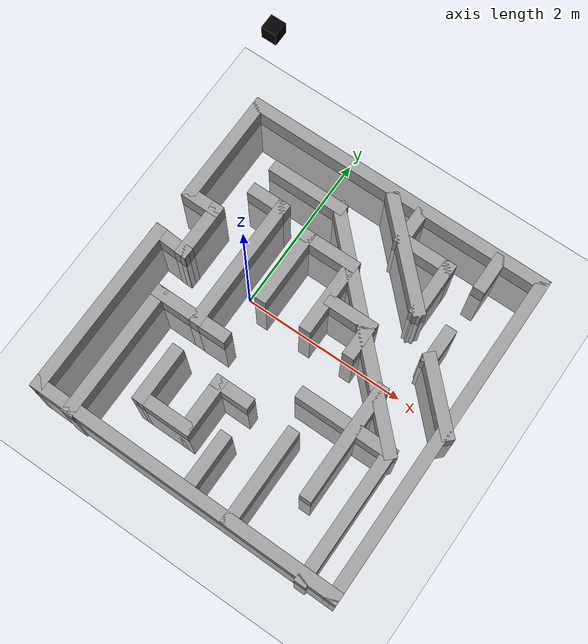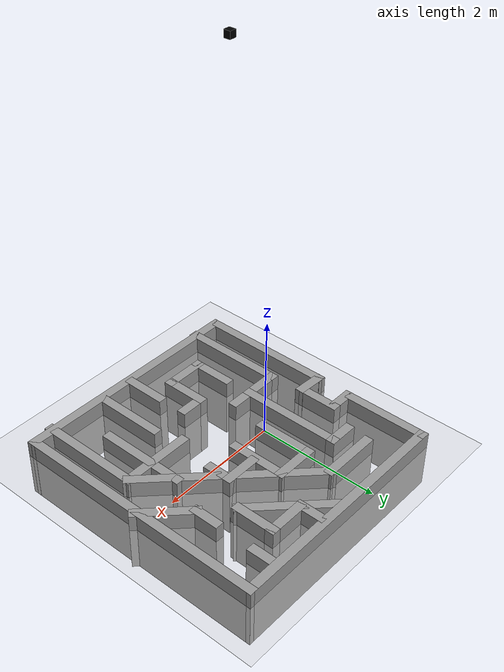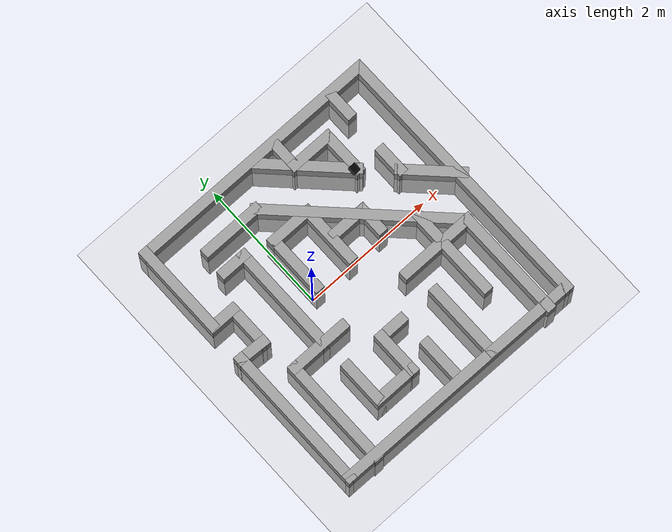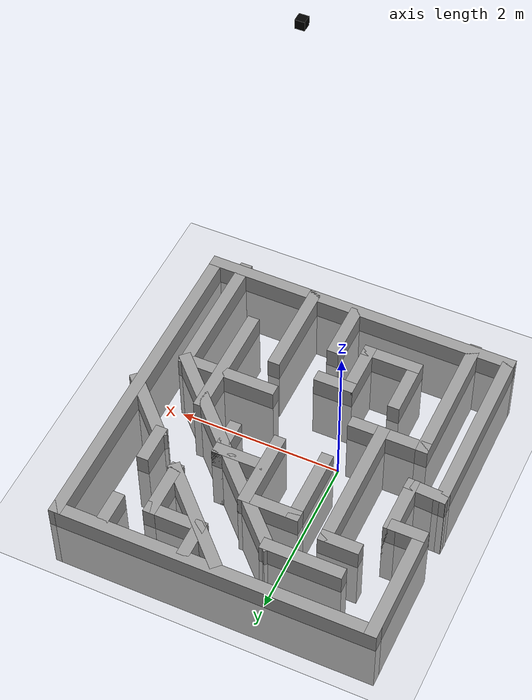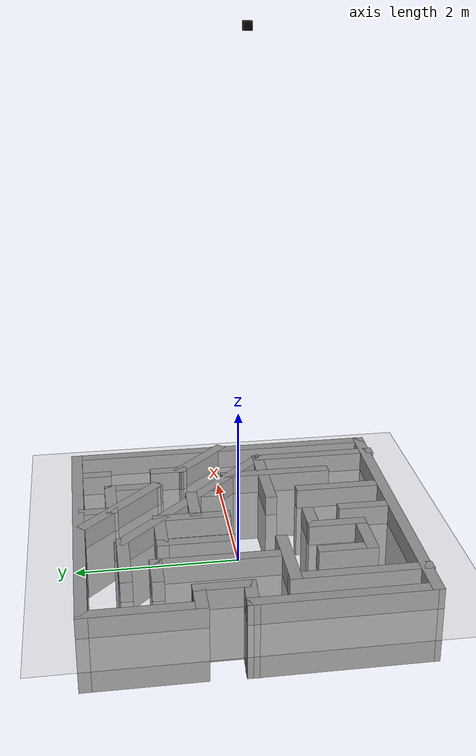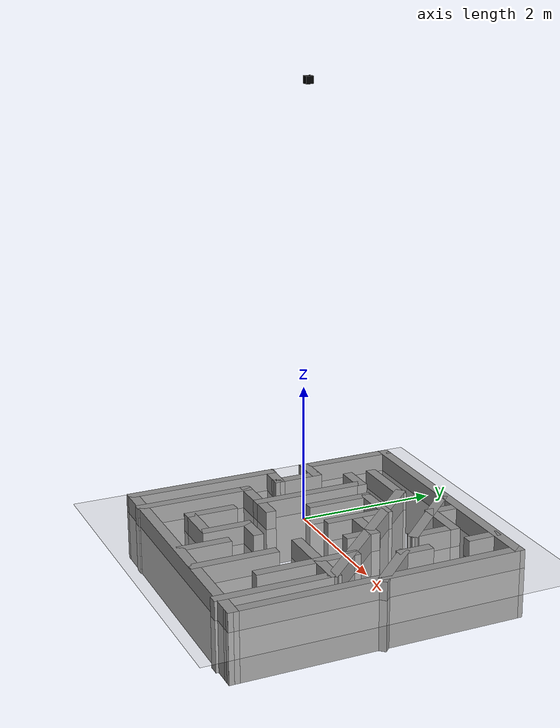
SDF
<sdf version="1.7">
 <world name="default">
  <model name="ground_plane">
   <static>1</static>
   <link name="link">
    <collision name="collision">
     <geometry><plane><normal>0 0 1</normal><size>100 100</size></plane></geometry>
     <surface>
      <contact><collide_bitmask>65535</collide_bitmask></contact>
      <friction><ode><mu>100</mu><mu2>50</mu2></ode></friction>
     </surface>
    </collision>
    <visual name="visual">
     <cast_shadows>0</cast_shadows>
     <geometry><plane><normal>0 0 1</normal><size>100 100</size></plane></geometry>
     <material>
      <script><uri>file://media/materials/scripts/gazebo.material</uri><name>Gazebo/Grey</name></script>
     </material>
    </visual>
   </link>
  </model>
  <light name="sun" type="directional">
   <pose>0 0 10 0 -0 0</pose>
   <diffuse>0.8 0.8 0.8 1</diffuse>
   <specular>0.2 0.2 0.2 1</specular>
   <attenuation>
    <range>1000</range>
    <constant>0.9</constant>
    <linear>0.01</linear>
    <quadratic>0.001</quadratic>
   </attenuation>
   <direction>-0.5 0.1 -0.9</direction>
   <spot><inner_angle>0</inner_angle><outer_angle>0</outer_angle><falloff>0</falloff></spot>
  </light>
  <scene><shadows>0</shadows><ambient>0.4 0.4 0.4 1</ambient><background>0.7 0.7 0.7 1</background></scene>
  <physics type="ode">
   <real_time_update_rate>1000</real_time_update_rate>
   <max_step_size>0.001</max_step_size>
   <real_time_factor>1</real_time_factor>
   <ode>
    <solver>
     <type>quick</type>
     <iters>150</iters>
     <precon_iters>0</precon_iters>
     <sor>1.4</sor>
     <use_dynamic_moi_rescaling>1</use_dynamic_moi_rescaling>
    </solver>
    <constraints>
     <cfm>1e-05</cfm>
     <erp>0.2</erp>
     <contact_max_correcting_vel>2000</contact_max_correcting_vel>
     <contact_surface_layer>0.01</contact_surface_layer>
    </constraints>
   </ode>
  </physics>
  <gravity>0 0 -9.8</gravity>
  <magnetic_field>6e-06 2.3e-05 -4.2e-05</magnetic_field>
  <atmosphere type="adiabatic"/>
  <audio><device>default</device></audio>
  <spherical_coordinates>
   <surface_model>EARTH_WGS84</surface_model>
   <latitude_deg>0</latitude_deg>
   <longitude_deg>0</longitude_deg>
   <elevation>0</elevation>
   <heading_deg>0</heading_deg>
  </spherical_coordinates>
  <model name="camera">
   <pose>0.579863 -0.18546 6.32055 1.57079 1.57079 3.14159</pose>
   <static>1</static>
   <link name="link">
    <inertial>
     <mass>0.1</mass>
     <inertia>
      <ixx>0.000166667</ixx>
      <iyy>0.000166667</iyy>
      <izz>0.000166667</izz>
      <ixy>0</ixy>
      <ixz>0</ixz>
      <iyz>0</iyz>
     </inertia>
    </inertial>
    <collision name="collision"><geometry><box><size>0.1 0.1 0.1</size></box></geometry></collision>
    <visual name="visual">
     <geometry><box><size>0.1 0.1 0.1</size></box></geometry>
     <material>
      <ambient>0 0 0 1</ambient>
      <diffuse>0 0 0 1</diffuse>
      <specular>0 0 0 0</specular>
      <emissive>1 0 0 1</emissive>
     </material>
    </visual>
    <sensor name="camera" type="camera">
     <camera>
      <horizontal_fov>1.047</horizontal_fov>
      <image><width>320</width><height>240</height></image>
      <clip><near>0.1</near><far>100</far></clip>
     </camera>
     <plugin name="camera_controller" filename="libgazebo_ros_camera.so"/>
     <always_on>1</always_on>
     <update_rate>30</update_rate>
     <visualize>1</visualize>
    </sensor>
   </link>
  </model>
  <model name="mazeSWY">
   <pose>0.699615 -0.128175 -0.743142 0 -0 0</pose>
   <link name="Wall_0">
    <collision name="Wall_0_Collision">
     <geometry><box><size>4.03012 0.15 1</size></box></geometry>
     <pose>0 0 0.5 0 -0 0</pose>
    </collision>
    <visual name="Wall_0_Visual">
     <pose>0 0 0.5 0 -0 0</pose>
     <geometry><box><size>4.03012 0.15 1</size></box></geometry>
     <material>
      <script><uri>file://media/materials/scripts/gazebo.material</uri><name>Gazebo/Grey</name></script>
      <ambient>1 1 1 1</ambient>
     </material>
    </visual>
    <pose>-0.033574 -2.02259 0 0 0 -0.007732</pose>
   </link>
   <link name="Wall_11">
    <collision name="Wall_11_Collision">
     <geometry><box><size>1.75 0.15 1</size></box></geometry>
     <pose>0 0 0.5 0 -0 0</pose>
    </collision>
    <visual name="Wall_11_Visual">
     <pose>0 0 0.5 0 -0 0</pose>
     <geometry><box><size>1.75 0.15 1</size></box></geometry>
     <material>
      <script><uri>file://media/materials/scripts/gazebo.material</uri><name>Gazebo/Grey</name></script>
      <ambient>1 1 1 1</ambient>
     </material>
    </visual>
    <pose>-1.52357 -1.22759 0 0 -0 1.5708</pose>
   </link>
   <link name="Wall_2">
    <collision name="Wall_2_Collision">
     <geometry><box><size>4.26001 0.15 1</size></box></geometry>
     <pose>0 0 0.5 0 -0 0</pose>
    </collision>
    <visual name="Wall_2_Visual">
     <pose>0 0 0.5 0 -0 0</pose>
     <geometry><box><size>4.26001 0.15 1</size></box></geometry>
     <material>
      <script><uri>file://media/materials/scripts/gazebo.material</uri><name>Gazebo/Grey</name></script>
      <ambient>1 1 1 1</ambient>
     </material>
    </visual>
    <pose>1.90143 0.017409 0 0 -0 1.57323</pose>
   </link>
   <link name="Wall_205">
    <collision name="Wall_205_Collision">
     <geometry><box><size>1 0.15 1</size></box></geometry>
     <pose>0 0 0.5 0 -0 0</pose>
    </collision>
    <visual name="Wall_205_Visual">
     <pose>0 0 0.5 0 -0 0</pose>
     <geometry><box><size>1 0.15 1</size></box></geometry>
     <material>
      <script><uri>file://media/materials/scripts/gazebo.material</uri><name>Gazebo/Grey</name></script>
      <ambient>1 1 1 1</ambient>
     </material>
    </visual>
    <pose>-1.09857 -0.427591 0 0 -0 0</pose>
   </link>
   <link name="Wall_21">
    <collision name="Wall_21_Collision">
     <geometry><box><size>1.75 0.15 1</size></box></geometry>
     <pose>0 0 0.5 0 -0 0</pose>
    </collision>
    <visual name="Wall_21_Visual">
     <pose>0 0 0.5 0 -0 0</pose>
     <geometry><box><size>1.75 0.15 1</size></box></geometry>
     <material>
      <script><uri>file://media/materials/scripts/gazebo.material</uri><name>Gazebo/Grey</name></script>
      <ambient>1 1 1 1</ambient>
     </material>
    </visual>
    <pose>-1.00357 0.372409 0 0 -0 1.5708</pose>
   </link>
   <link name="Wall_22">
    <collision name="Wall_22_Collision">
     <geometry><box><size>0.5 0.15 1</size></box></geometry>
     <pose>0 0 0.5 0 -0 0</pose>
    </collision>
    <visual name="Wall_22_Visual">
     <pose>0 0 0.5 0 -0 0</pose>
     <geometry><box><size>0.5 0.15 1</size></box></geometry>
     <material>
      <script><uri>file://media/materials/scripts/gazebo.material</uri><name>Gazebo/Grey</name></script>
      <ambient>1 1 1 1</ambient>
     </material>
    </visual>
    <pose>-1.17857 1.17241 0 0 -0 3.14159</pose>
   </link>
   <link name="Wall_24">
    <collision name="Wall_24_Collision">
     <geometry><box><size>0.75 0.15 1</size></box></geometry>
     <pose>0 0 0.5 0 -0 0</pose>
    </collision>
    <visual name="Wall_24_Visual">
     <pose>0 0 0.5 0 -0 0</pose>
     <geometry><box><size>0.75 0.15 1</size></box></geometry>
     <material>
      <script><uri>file://media/materials/scripts/gazebo.material</uri><name>Gazebo/Grey</name></script>
      <ambient>1 1 1 1</ambient>
     </material>
    </visual>
    <pose>-0.983574 -1.18759 0 0 0 -1.5708</pose>
   </link>
   <link name="Wall_25">
    <collision name="Wall_25_Collision">
     <geometry><box><size>0.75 0.15 1</size></box></geometry>
     <pose>0 0 0.5 0 -0 0</pose>
    </collision>
    <visual name="Wall_25_Visual">
     <pose>0 0 0.5 0 -0 0</pose>
     <geometry><box><size>0.75 0.15 1</size></box></geometry>
     <material>
      <script><uri>file://media/materials/scripts/gazebo.material</uri><name>Gazebo/Grey</name></script>
      <ambient>1 1 1 1</ambient>
     </material>
    </visual>
    <pose>-0.683574 -1.48759 0 0 -0 0</pose>
   </link>
   <link name="Wall_26">
    <collision name="Wall_26_Collision">
     <geometry><box><size>0.75 0.15 1</size></box></geometry>
     <pose>0 0 0.5 0 -0 0</pose>
    </collision>
    <visual name="Wall_26_Visual">
     <pose>0 0 0.5 0 -0 0</pose>
     <geometry><box><size>0.75 0.15 1</size></box></geometry>
     <material>
      <script><uri>file://media/materials/scripts/gazebo.material</uri><name>Gazebo/Grey</name></script>
      <ambient>1 1 1 1</ambient>
     </material>
    </visual>
    <pose>-0.383574 -1.18759 0 0 -0 1.5708</pose>
   </link>
   <link name="Wall_27">
    <collision name="Wall_27_Collision">
     <geometry><box><size>0.5 0.15 1</size></box></geometry>
     <pose>0 0 0.5 0 -0 0</pose>
    </collision>
    <visual name="Wall_27_Visual">
     <pose>0 0 0.5 0 -0 0</pose>
     <geometry><box><size>0.5 0.15 1</size></box></geometry>
     <material>
      <script><uri>file://media/materials/scripts/gazebo.material</uri><name>Gazebo/Grey</name></script>
      <ambient>1 1 1 1</ambient>
     </material>
    </visual>
    <pose>-0.208574 -0.887591 0 0 -0 0</pose>
   </link>
   <link name="Wall_29">
    <collision name="Wall_29_Collision">
     <geometry><box><size>1 0.15 1</size></box></geometry>
     <pose>0 0 0.5 0 -0 0</pose>
    </collision>
    <visual name="Wall_29_Visual">
     <pose>0 0 0.5 0 -0 0</pose>
     <geometry><box><size>1 0.15 1</size></box></geometry>
     <material>
      <script><uri>file://media/materials/scripts/gazebo.material</uri><name>Gazebo/Grey</name></script>
      <ambient>1 1 1 1</ambient>
     </material>
    </visual>
    <pose>-0.888574 1.54241 0 0 -0 0</pose>
   </link>
   <link name="Wall_30">
    <collision name="Wall_30_Collision">
     <geometry><box><size>3 0.15 1</size></box></geometry>
     <pose>0 0 0.5 0 -0 0</pose>
    </collision>
    <visual name="Wall_30_Visual">
     <pose>0 0 0.5 0 -0 0</pose>
     <geometry><box><size>3 0.15 1</size></box></geometry>
     <material>
      <script><uri>file://media/materials/scripts/gazebo.material</uri><name>Gazebo/Grey</name></script>
      <ambient>1 1 1 1</ambient>
     </material>
    </visual>
    <pose>0.543926 0.534909 0 0 0 -0.785398</pose>
   </link>
   <link name="Wall_31">
    <collision name="Wall_31_Collision">
     <geometry><box><size>1.75 0.15 1</size></box></geometry>
     <pose>0 0 0.5 0 -0 0</pose>
    </collision>
    <visual name="Wall_31_Visual">
     <pose>0 0 0.5 0 -0 0</pose>
     <geometry><box><size>1.75 0.15 1</size></box></geometry>
     <material>
      <script><uri>file://media/materials/scripts/gazebo.material</uri><name>Gazebo/Grey</name></script>
      <ambient>1 1 1 1</ambient>
     </material>
    </visual>
    <pose>1.55143 -1.27259 0 0 0 -1.5708</pose>
   </link>
   <link name="Wall_33">
    <collision name="Wall_33_Collision">
     <geometry><box><size>0.75 0.15 1</size></box></geometry>
     <pose>0 0 0.5 0 -0 0</pose>
    </collision>
    <visual name="Wall_33_Visual">
     <pose>0 0 0.5 0 -0 0</pose>
     <geometry><box><size>0.75 0.15 1</size></box></geometry>
     <material>
      <script><uri>file://media/materials/scripts/gazebo.material</uri><name>Gazebo/Grey</name></script>
      <ambient>1 1 1 1</ambient>
     </material>
    </visual>
    <pose>-0.263574 1.05241 0 0 -0 3.14159</pose>
   </link>
   <link name="Wall_34">
    <collision name="Wall_34_Collision">
     <geometry><box><size>1 0.15 1</size></box></geometry>
     <pose>0 0 0.5 0 -0 0</pose>
    </collision>
    <visual name="Wall_34_Visual">
     <pose>0 0 0.5 0 -0 0</pose>
     <geometry><box><size>1 0.15 1</size></box></geometry>
     <material>
      <script><uri>file://media/materials/scripts/gazebo.material</uri><name>Gazebo/Grey</name></script>
      <ambient>1 1 1 1</ambient>
     </material>
    </visual>
    <pose>-0.563574 0.627409 0 0 0 -1.5708</pose>
   </link>
   <link name="Wall_36">
    <collision name="Wall_36_Collision">
     <geometry><box><size>1 0.15 1</size></box></geometry>
     <pose>0 0 0.5 0 -0 0</pose>
    </collision>
    <visual name="Wall_36_Visual">
     <pose>0 0 0.5 0 -0 0</pose>
     <geometry><box><size>1 0.15 1</size></box></geometry>
     <material>
      <script><uri>file://media/materials/scripts/gazebo.material</uri><name>Gazebo/Grey</name></script>
      <ambient>1 1 1 1</ambient>
     </material>
    </visual>
    <pose>0.036426 0.627409 0 0 0 -1.5708</pose>
   </link>
   <link name="Wall_38">
    <collision name="Wall_38_Collision">
     <geometry><box><size>0.64 0.15 1</size></box></geometry>
     <pose>0 0 0.5 0 -0 0</pose>
    </collision>
    <visual name="Wall_38_Visual">
     <pose>0 0 0.5 0 -0 0</pose>
     <geometry><box><size>0.64 0.15 1</size></box></geometry>
     <material>
      <script><uri>file://media/materials/scripts/gazebo.material</uri><name>Gazebo/Grey</name></script>
      <ambient>1 1 1 1</ambient>
     </material>
    </visual>
    <pose>0.351426 0.572409 0 0 -0 0</pose>
   </link>
   <link name="Wall_4">
    <collision name="Wall_4_Collision">
     <geometry><box><size>4 0.15 1</size></box></geometry>
     <pose>0 0 0.5 0 -0 0</pose>
    </collision>
    <visual name="Wall_4_Visual">
     <pose>0 0 0.5 0 -0 0</pose>
     <geometry><box><size>4 0.15 1</size></box></geometry>
     <material>
      <script><uri>file://media/materials/scripts/gazebo.material</uri><name>Gazebo/Grey</name></script>
      <ambient>1 1 1 1</ambient>
     </material>
    </visual>
    <pose>-0.028574 2.07241 0 0 -0 3.14159</pose>
   </link>
   <link name="Wall_42">
    <collision name="Wall_42_Collision">
     <geometry><box><size>0.5 0.15 1</size></box></geometry>
     <pose>0 0 0.5 0 -0 0</pose>
    </collision>
    <visual name="Wall_42_Visual">
     <pose>0 0 0.5 0 -0 0</pose>
     <geometry><box><size>0.5 0.15 1</size></box></geometry>
     <material>
      <script><uri>file://media/materials/scripts/gazebo.material</uri><name>Gazebo/Grey</name></script>
      <ambient>1 1 1 1</ambient>
     </material>
    </visual>
    <pose>0.596426 0.397409 0 0 0 -1.5708</pose>
   </link>
   <link name="Wall_44">
    <collision name="Wall_44_Collision">
     <geometry><box><size>1.5 0.15 1</size></box></geometry>
     <pose>0 0 0.5 0 -0 0</pose>
    </collision>
    <visual name="Wall_44_Visual">
     <pose>0 0 0.5 0 -0 0</pose>
     <geometry><box><size>1.5 0.15 1</size></box></geometry>
     <material>
      <script><uri>file://media/materials/scripts/gazebo.material</uri><name>Gazebo/Grey</name></script>
      <ambient>1 1 1 1</ambient>
     </material>
    </visual>
    <pose>1.09643 -0.642591 0 0 0 -1.5708</pose>
   </link>
   <link name="Wall_46">
    <collision name="Wall_46_Collision">
     <geometry><box><size>1.25 0.15 1</size></box></geometry>
     <pose>0 0 0.5 0 -0 0</pose>
    </collision>
    <visual name="Wall_46_Visual">
     <pose>0 0 0.5 0 -0 0</pose>
     <geometry><box><size>1.25 0.15 1</size></box></geometry>
     <material>
      <script><uri>file://media/materials/scripts/gazebo.material</uri><name>Gazebo/Grey</name></script>
      <ambient>1 1 1 1</ambient>
     </material>
    </visual>
    <pose>1.00143 -0.472591 0 0 -0 3.14159</pose>
   </link>
   <link name="Wall_48">
    <collision name="Wall_48_Collision">
     <geometry><box><size>1.25 0.15 1</size></box></geometry>
     <pose>0 0 0.5 0 -0 0</pose>
    </collision>
    <visual name="Wall_48_Visual">
     <pose>0 0 0.5 0 -0 0</pose>
     <geometry><box><size>1.25 0.15 1</size></box></geometry>
     <material>
      <script><uri>file://media/materials/scripts/gazebo.material</uri><name>Gazebo/Grey</name></script>
      <ambient>1 1 1 1</ambient>
     </material>
    </visual>
    <pose>0.576426 -1.46759 0 0 -0 1.5708</pose>
   </link>
   <link name="Wall_5">
    <collision name="Wall_5_Collision">
     <geometry><box><size>1.5 0.15 1</size></box></geometry>
     <pose>0 0 0.5 0 -0 0</pose>
    </collision>
    <visual name="Wall_5_Visual">
     <pose>0 0 0.5 0 -0 0</pose>
     <geometry><box><size>1.5 0.15 1</size></box></geometry>
     <material>
      <script><uri>file://media/materials/scripts/gazebo.material</uri><name>Gazebo/Grey</name></script>
      <ambient>1 1 1 1</ambient>
     </material>
    </visual>
    <pose>-1.95357 1.39741 0 0 0 -1.5708</pose>
   </link>
   <link name="Wall_50">
    <collision name="Wall_50_Collision">
     <geometry><box><size>0.75 0.15 1</size></box></geometry>
     <pose>0 0 0.5 0 -0 0</pose>
    </collision>
    <visual name="Wall_50_Visual">
     <pose>0 0 0.5 0 -0 0</pose>
     <geometry><box><size>0.75 0.15 1</size></box></geometry>
     <material>
      <script><uri>file://media/materials/scripts/gazebo.material</uri><name>Gazebo/Grey</name></script>
      <ambient>1 1 1 1</ambient>
     </material>
    </visual>
    <pose>0.006426 -1.66759 0 0 -0 1.5708</pose>
   </link>
   <link name="Wall_52">
    <collision name="Wall_52_Collision">
     <geometry><box><size>1 0.15 1</size></box></geometry>
     <pose>0 0 0.5 0 -0 0</pose>
    </collision>
    <visual name="Wall_52_Visual">
     <pose>0 0 0.5 0 -0 0</pose>
     <geometry><box><size>1 0.15 1</size></box></geometry>
     <material>
      <script><uri>file://media/materials/scripts/gazebo.material</uri><name>Gazebo/Grey</name></script>
      <ambient>1 1 1 1</ambient>
     </material>
    </visual>
    <pose>1.64593 0.342909 0 0 -0 2.35619</pose>
   </link>
   <link name="Wall_53">
    <collision name="Wall_53_Collision">
     <geometry><box><size>0.5 0.15 1</size></box></geometry>
     <pose>0 0 0.5 0 -0 0</pose>
    </collision>
    <visual name="Wall_53_Visual">
     <pose>0 0 0.5 0 -0 0</pose>
     <geometry><box><size>0.5 0.15 1</size></box></geometry>
     <material>
      <script><uri>file://media/materials/scripts/gazebo.material</uri><name>Gazebo/Grey</name></script>
      <ambient>1 1 1 1</ambient>
     </material>
    </visual>
    <pose>1.34543 0.818409 0 0 -0 1.5708</pose>
   </link>
   <link name="Wall_55">
    <collision name="Wall_55_Collision">
     <geometry><box><size>0.5 0.15 1</size></box></geometry>
     <pose>0 0 0.5 0 -0 0</pose>
    </collision>
    <visual name="Wall_55_Visual">
     <pose>0 0 0.5 0 -0 0</pose>
     <geometry><box><size>0.5 0.15 1</size></box></geometry>
     <material>
      <script><uri>file://media/materials/scripts/gazebo.material</uri><name>Gazebo/Grey</name></script>
      <ambient>1 1 1 1</ambient>
     </material>
    </visual>
    <pose>1.35643 1.85741 0 0 0 -1.5708</pose>
   </link>
   <link name="Wall_57">
    <collision name="Wall_57_Collision">
     <geometry><box><size>1.50057 0.15 1</size></box></geometry>
     <pose>0 0 0.5 0 -0 0</pose>
    </collision>
    <visual name="Wall_57_Visual">
     <pose>0 0 0.5 0 -0 0</pose>
     <geometry><box><size>1.50057 0.15 1</size></box></geometry>
     <material>
      <script><uri>file://media/materials/scripts/gazebo.material</uri><name>Gazebo/Grey</name></script>
      <ambient>1 1 1 1</ambient>
     </material>
    </visual>
    <pose>0.453926 1.51491 0 0 0 -0.785398</pose>
   </link>
   <link name="Wall_58">
    <collision name="Wall_58_Collision">
     <geometry><box><size>0.750406 0.15 1</size></box></geometry>
     <pose>0 0 0.5 0 -0 0</pose>
    </collision>
    <visual name="Wall_58_Visual">
     <pose>0 0 0.5 0 -0 0</pose>
     <geometry><box><size>0.750406 0.15 1</size></box></geometry>
     <material>
      <script><uri>file://media/materials/scripts/gazebo.material</uri><name>Gazebo/Grey</name></script>
      <ambient>1 1 1 1</ambient>
     </material>
    </visual>
    <pose>0.931426 1.33741 0 0 -0 1.5708</pose>
   </link>
   <link name="Wall_59">
    <collision name="Wall_59_Collision">
     <geometry><box><size>0.75 0.15 1</size></box></geometry>
     <pose>0 0 0.5 0 -0 0</pose>
    </collision>
    <visual name="Wall_59_Visual">
     <pose>0 0 0.5 0 -0 0</pose>
     <geometry><box><size>0.75 0.15 1</size></box></geometry>
     <material>
      <script><uri>file://media/materials/scripts/gazebo.material</uri><name>Gazebo/Grey</name></script>
      <ambient>1 1 1 1</ambient>
     </material>
    </visual>
    <pose>0.631426 1.63741 0 0 -0 3.14159</pose>
   </link>
   <link name="Wall_6">
    <collision name="Wall_6_Collision">
     <geometry><box><size>0.5 0.15 1</size></box></geometry>
     <pose>0 0 0.5 0 -0 0</pose>
    </collision>
    <visual name="Wall_6_Visual">
     <pose>0 0 0.5 0 -0 0</pose>
     <geometry><box><size>0.5 0.15 1</size></box></geometry>
     <material>
      <script><uri>file://media/materials/scripts/gazebo.material</uri><name>Gazebo/Grey</name></script>
      <ambient>1 1 1 1</ambient>
     </material>
    </visual>
    <pose>-1.77857 0.722409 0 0 -0 0</pose>
   </link>
   <link name="Wall_60">
    <collision name="Wall_60_Collision">
     <geometry><box><size>0.5 0.15 1</size></box></geometry>
     <pose>0 0 0.5 0 -0 0</pose>
    </collision>
    <visual name="Wall_60_Visual">
     <pose>0 0 0.5 0 -0 0</pose>
     <geometry><box><size>0.5 0.15 1</size></box></geometry>
     <material>
      <script><uri>file://media/materials/scripts/gazebo.material</uri><name>Gazebo/Grey</name></script>
      <ambient>1 1 1 1</ambient>
     </material>
    </visual>
    <pose>0.331426 1.81241 0 0 -0 1.5708</pose>
   </link>
   <link name="Wall_7">
    <collision name="Wall_7_Collision">
     <geometry><box><size>0.75 0.15 1</size></box></geometry>
     <pose>0 0 0.5 0 -0 0</pose>
    </collision>
    <visual name="Wall_7_Visual">
     <pose>0 0 0.5 0 -0 0</pose>
     <geometry><box><size>0.75 0.15 1</size></box></geometry>
     <material>
      <script><uri>file://media/materials/scripts/gazebo.material</uri><name>Gazebo/Grey</name></script>
      <ambient>1 1 1 1</ambient>
     </material>
    </visual>
    <pose>-1.60357 0.422409 0 0 0 -1.5708</pose>
   </link>
   <link name="Wall_8">
    <collision name="Wall_8_Collision">
     <geometry><box><size>0.52054 0.15 1</size></box></geometry>
     <pose>0 0 0.5 0 -0 0</pose>
    </collision>
    <visual name="Wall_8_Visual">
     <pose>0 0 0.5 0 -0 0</pose>
     <geometry><box><size>0.52054 0.15 1</size></box></geometry>
     <material>
      <script><uri>file://media/materials/scripts/gazebo.material</uri><name>Gazebo/Grey</name></script>
      <ambient>1 1 1 1</ambient>
     </material>
    </visual>
    <pose>-1.78857 0.132409 0 0 -0 3.08759</pose>
   </link>
   <link name="Wall_9">
    <collision name="Wall_9_Collision">
     <geometry><box><size>2.3 0.15 1</size></box></geometry>
     <pose>0 0 0.5 0 -0 0</pose>
    </collision>
    <visual name="Wall_9_Visual">
     <pose>0 0 0.5 0 -0 0</pose>
     <geometry><box><size>2.3 0.15 1</size></box></geometry>
     <material>
      <script><uri>file://media/materials/scripts/gazebo.material</uri><name>Gazebo/Grey</name></script>
      <ambient>1 1 1 1</ambient>
     </material>
    </visual>
    <pose>-1.97357 -0.932591 0 0 0 -1.5708</pose>
   </link>
   <static>1</static>
  </model>
 </world>
</sdf>
